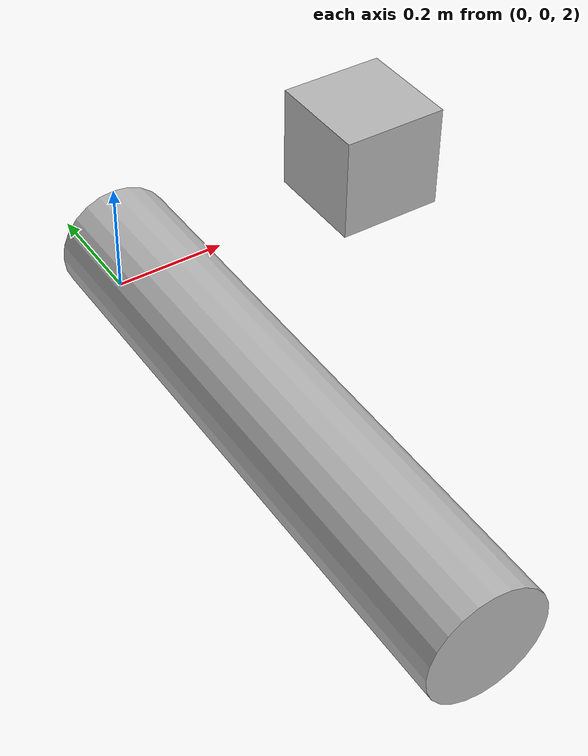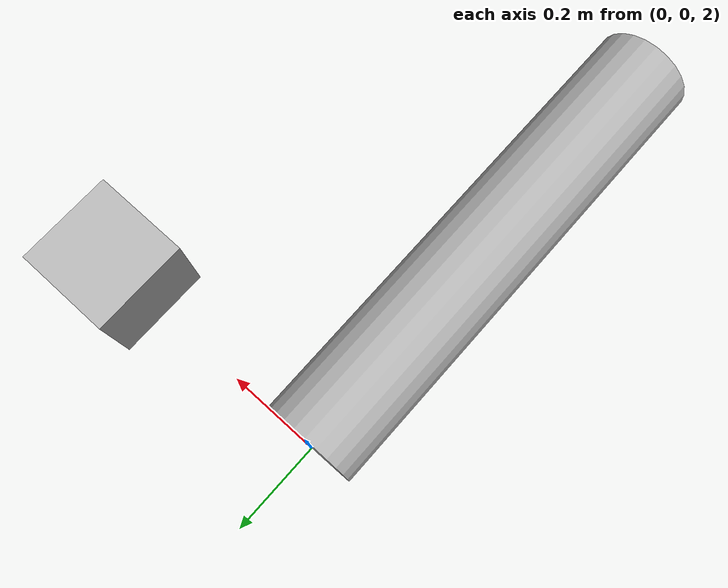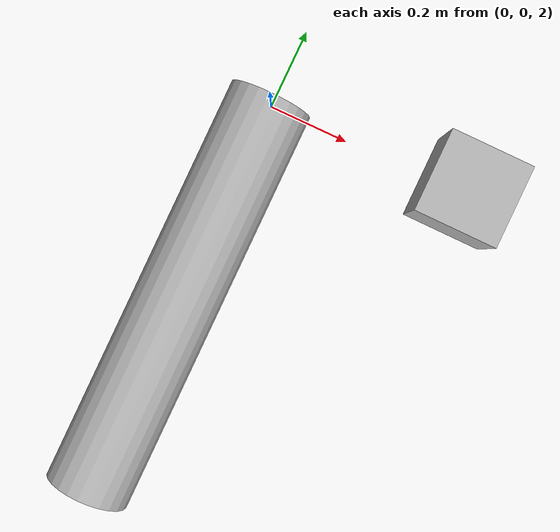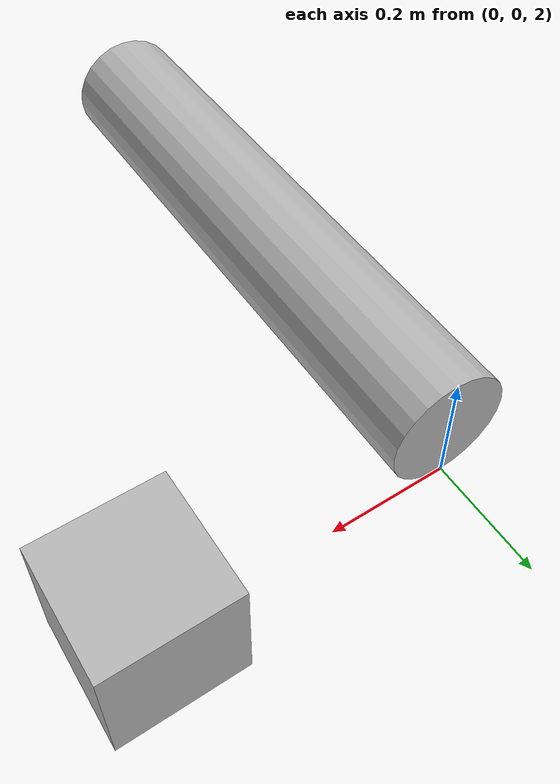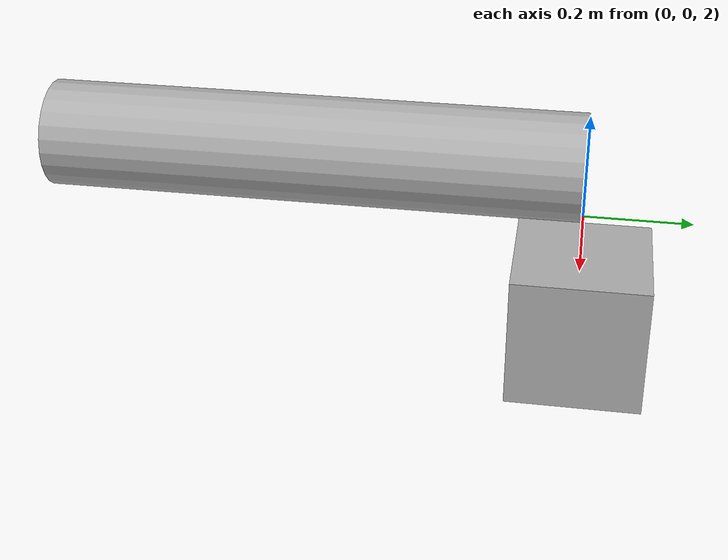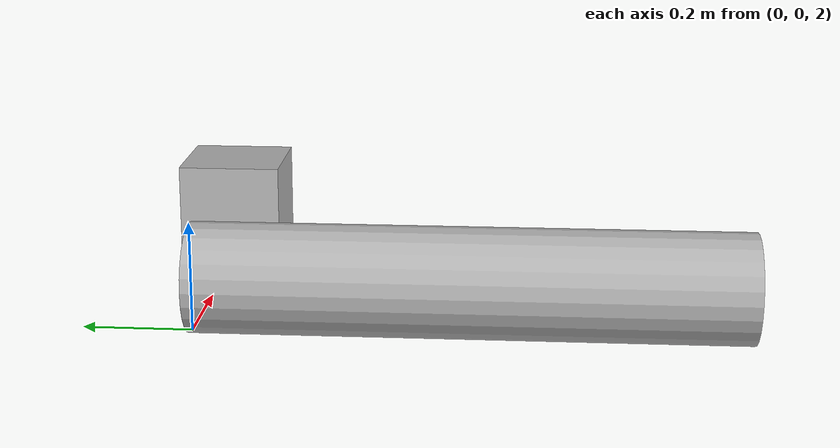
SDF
<?xml version="1.0" ?>
<sdf version="1.5">
  <world name="default">
    <!-- A global light source -->
    <include>
      <uri>model://sun</uri>
    </include>
    <!-- A ground plane -->
    <include>
      <uri>model://ground_plane</uri>
    </include>
    <physics type="ode">
      <gravity>0.000000 0.000000 0.00000</gravity>
      <max_step_size>0.000100</max_step_size>
      <ode>
        <solver>
          <type>quick</type>
          <iters>100</iters>
          <precon_iters>0</precon_iters>
          <sor>1.300000</sor>
        </solver>
        <constraints>
          <cfm>0.000000</cfm>
          <erp>1.000000</erp>
          <contact_max_correcting_vel>0.000000</contact_max_correcting_vel>
          <contact_surface_layer>0.000000</contact_surface_layer>
        </constraints>
      </ode>
      <real_time_update_rate>0.000000</real_time_update_rate>
    </physics>
    <model name="model_1">
      <pose>0.000000 0.000000 2.100000 -1.57079 -0.000000 0</pose>
      <link name="link_1">
        <pose>0.000000 0.000000 0.000000 0.000000 0.000000 0</pose>
        <inertial>
          <pose>0.000000 0.000000 -0.500000 0.000000 -0.000000 0.000000</pose>
          <inertia>
            <ixx>1.000000</ixx>
            <ixy>0.000000</ixy>
            <ixz>0.000000</ixz>
            <iyy>1.000000</iyy>
            <iyz>0.000000</iyz>
            <izz>1.000000</izz>
          </inertia>
          <mass>10.000000</mass>
        </inertial>
        <visual name="visual_cylinder">
          <pose>0.000000 0.000000 -0.500000 0.000000 -0.000000 0.000000</pose>
          <geometry>
            <cylinder>
              <radius>0.100000</radius>
              <length>1.000000</length>
            </cylinder>
          </geometry>
          <material>
            <script>Gazebo/Green</script>
          </material>
          <cast_shadows>1</cast_shadows>
          <laser_retro>100.000000</laser_retro>
          <transparency>0.000000</transparency>
        </visual>
        <collision name="collision_cylinder">
          <pose>0.000000 0.000000 -0.500000 0.000000 -0.000000 0.000000</pose>
          <max_contacts>250</max_contacts>
          <geometry>
            <cylinder>
              <radius>0.100000</radius>
              <length>1.000000</length>
            </cylinder>
          </geometry>
        </collision>
        <gravity>1</gravity>
        <self_collide>1</self_collide>
        <kinematic>0</kinematic>
      </link>
      <link name="link_2">
        <pose>0.500000 0.000000 0.000000 0.000000 -0.000000 0.000000</pose>
        <inertial>
          <pose>0.000000 0.000000 -0.500000 0.000000 -0.000000 0.000000</pose>
          <inertia>
            <ixx>1.000000</ixx>
            <ixy>0.000000</ixy>
            <ixz>0.000000</ixz>
            <iyy>1.000000</iyy>
            <iyz>0.000000</iyz>
            <izz>1.000000</izz>
          </inertia>
          <mass>10.000000</mass>
        </inertial>
        <visual name="visual_cylinder">
          <pose>0.000000 0.000000 0.000000 0.000000 -0.000000 0.000000</pose>
          <geometry>
            <box>
              <size>0.2 0.2 0.2</size>
            </box>
          </geometry>
          <material>
            <script>Gazebo/Green</script>
          </material>
          <cast_shadows>1</cast_shadows>
          <laser_retro>100.000000</laser_retro>
          <transparency>0.000000</transparency>
        </visual>
        <collision name="collision_cylinder">
          <pose>0.000000 0.000000 0.000000 0.000000 -0.000000 0.000000</pose>
          <max_contacts>250</max_contacts>
          <geometry>
            <box>
              <size>0.2 0.2 0.2</size>
            </box>
          </geometry>
        </collision>
        <gravity>1</gravity>
        <self_collide>1</self_collide>
        <kinematic>0</kinematic>
      </link>
      <joint name="joint_02" type="revolute">
        <parent>world</parent>
        <child>link_2</child>
        <axis>
          <xyz>1.000000 0.000000 0.000000</xyz>
          <limit>
            <upper>0</upper>
            <lower>0</lower>
          </limit>
          <use_parent_model_frame>true</use_parent_model_frame>
        </axis>
      </joint>
      <joint name="joint_12" type="screw">
        <parent>link_2</parent>
        <child>link_1</child>
        <pose> 0 0 0 0 0 1.57</pose>
        <axis>
          <xyz>1.000000 0.000000 0.000000</xyz>
          <use_parent_model_frame>false</use_parent_model_frame>
        </axis>
      </joint>
      <static>0</static>
    </model>
  </world>
</sdf>
